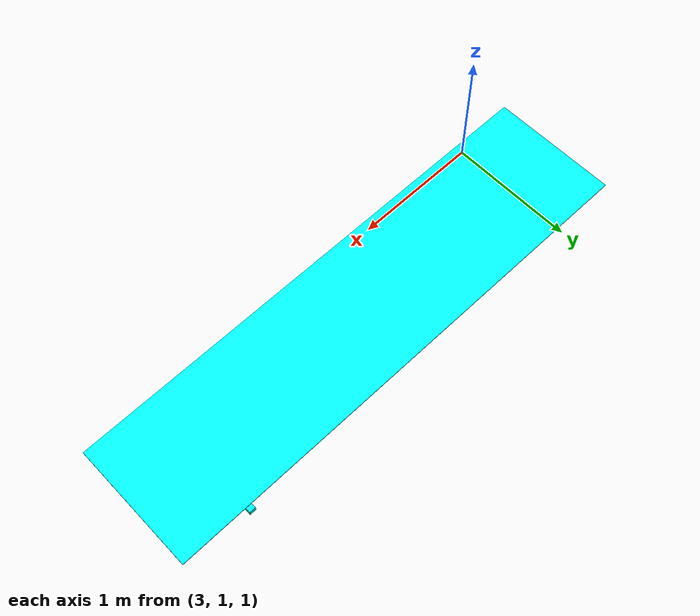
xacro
<?xml version="1.0"?>
<robot name="myfirst1" xmlns:xacro="http://www.ros.org/wiki/xacro">
   <material name="green">
    <color rgba="0 0.8 0 1"/>
  </material>

  <xacro:property name="l_h"      value="0.05" />
  <xacro:property name="b_h"      value="1" />
  <xacro:property name="h_h"      value="0.05" />
  <xacro:property name="m_h"      value="100000" />

  <xacro:property name="l_p"      value="4" />
  <xacro:property name="b_p"      value="1" />
  <xacro:property name="h_p"      value="0.01" />
  <xacro:property name="m_p"      value="1000000000" />

 <!--size =  l b h -->
  <link name="height">
   <inertial>
     <origin xyz="6 1.5 1" rpy="0 0 0"/>
     <mass value="${m_h}"/>
     <inertia ixx="${m_h*((b_h*b_h) + (h_h*h_h))/12}"  ixy="0"  ixz="0" iyy="${m_h*((l_h*l_h) + (h_h*h_h))/12}" iyz="0" izz="${m_h*((b_h*b_h) + (l_h*l_h))/12}" />
   </inertial>
   <visual>
     <origin xyz="6 1.5 1" rpy="0 0 0" />
     <geometry>
       <box size="${l_h} ${b_h} ${h_h}" />
     </geometry>
     <material name="Cyan">
       <color rgba="0 1.0 1.0 1.0"/>
     </material>
   </visual>
   <collision>
    <origin xyz="6 1.5 1" rpy="0 0 0"/>
    <geometry>
       <box size="${l_h} ${b_h} ${h_h}" />
     </geometry>
     <surface>
            <friction>
              <ode>
                <mu>1000000</mu>
                <mu2>1000000</mu2>
                <kp value="1000" />
                <kd value="1000" />
              </ode>
            </friction>
          </surface>
   </collision>
 </link>

  <gazebo reference="height">
    <material>Gazebo/White</material>
 </gazebo>

   <link name="plate">
   <inertial>
     <origin xyz="5 1.5 1" rpy="0 0 0"/>
     <mass value="${m_p}"/>
     <inertia ixx="${m_p*((b_p*b_p) + (h_p*h_p))/12}"  ixy="0"  ixz="0" iyy="${m_p*((l_p*l_p) + (h_p*h_p))/12}" iyz="0" izz="${m_p*((b_p*b_p) + (l_p*l_p))/12}" />
   </inertial>
   <visual>
     <origin xyz="5 1.5 1" rpy="0 0 0" />
     <geometry>
       <box size="${l_p} ${b_p} ${h_p}" />
     </geometry>
     <material name="Cyan">
       <color rgba="0 1.0 1.0 1.0"/>
     </material>
   </visual>
   <collision>
    <origin xyz="5 1.5 1" rpy="0 0 0"/>
    <geometry>
       <box size="${l_p} ${b_p} ${h_p}" />
     </geometry>
     <surface>
            <friction>
              <ode>
                <mu>1000000</mu>
                <mu2>1000000</mu2>
                <kp value="1000" />
                <kd value="1000" />
              </ode>
            </friction>
          </surface>
   </collision>
 </link>

  <gazebo reference="plate">
    <material>Gazebo/Black</material>
 </gazebo>

  <joint name="joint" type="fixed">
     <parent link="height"/>
     <child link="plate"/>
     <origin xyz="-0.45 0 0.15"/>
     <axis xyz="1 0 0"/>
     <limit effort="500" velocity="1.0" lower="-0.2" upper="0.3" />
   </joint>

</robot>
